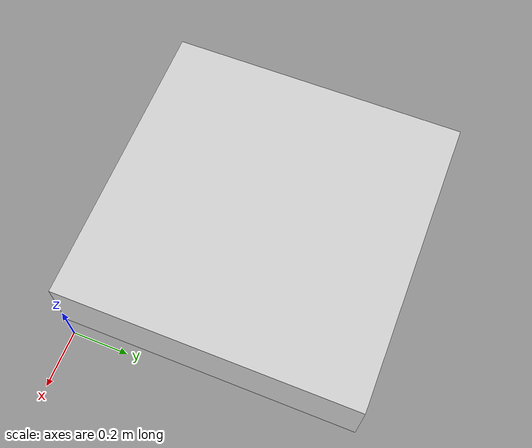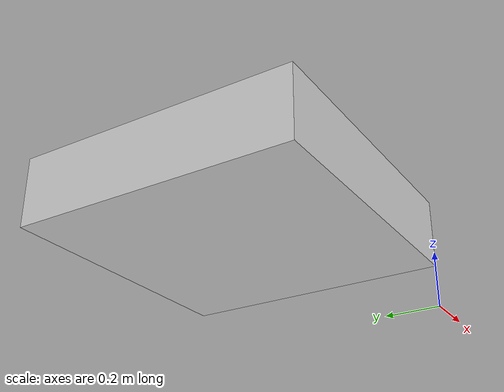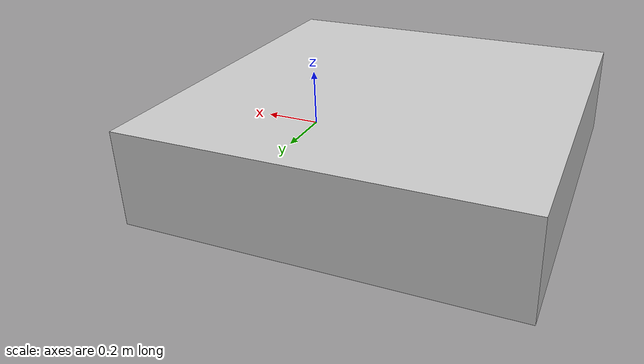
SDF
<?xml version="1.0" ?>
<sdf version="1.6">
  <model name="base">
    <static>true</static>
    <link name="link">
      <visual name="visual">
        <cast_shadows>true</cast_shadows>
        <geometry>
          <mesh>
            <uri>model://base/meshes/base.obj</uri>
          </mesh>
        </geometry>
        <material>
          <ambient>0.8 0.8 0.8 1</ambient>
          <diffuse>0.8 0.8 0.8 1</diffuse>
        </material>
      </visual>
      <collision name="collision">
        <geometry>
          <mesh>
            <uri>model://base/meshes/base_col.stl</uri>
          </mesh>
        </geometry>
      </collision>
    </link>
  </model>
</sdf>
